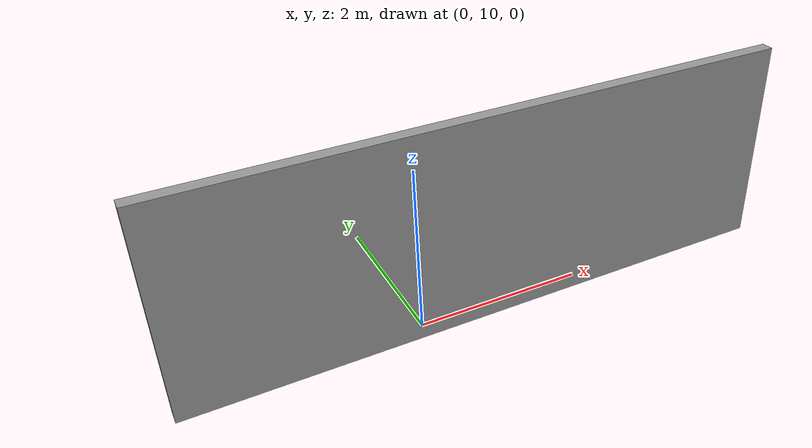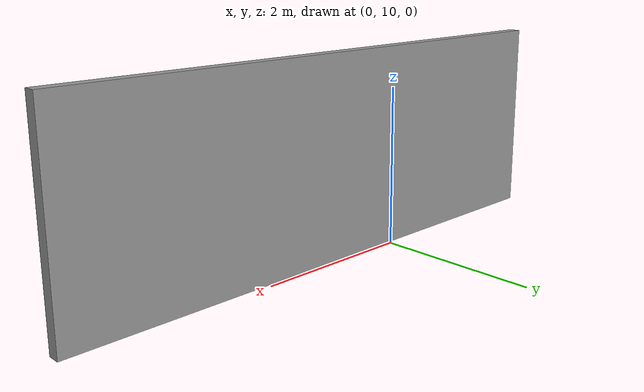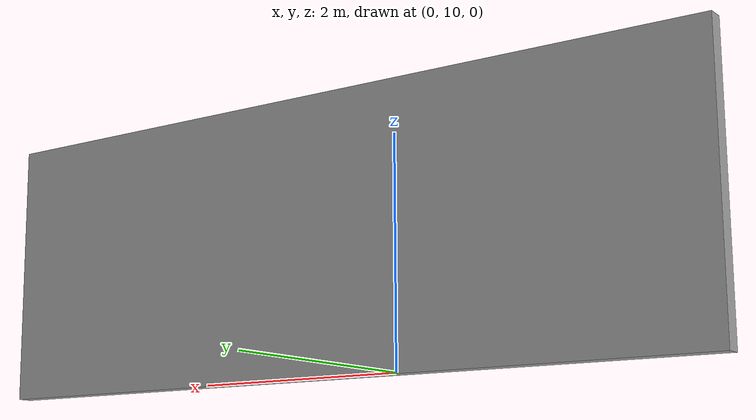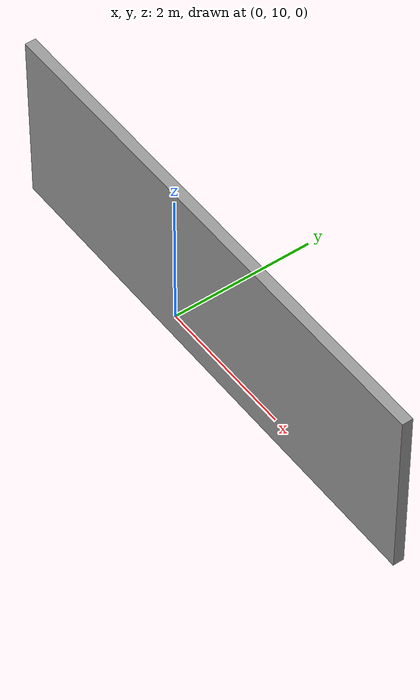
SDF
<?xml version='1.0'?>
<sdf version='1.6'>
  <model name='office'>
    <pose frame=''>0.86956 9.87635 0 0 -0 0</pose>
    <link name='Wall_1'>
      <collision name='Wall_1_Collision'>
        <geometry>
          <box>
            <size>7.25 0.15 2.5</size>
          </box>
        </geometry>
        <pose frame=''>0 0 1.25 0 -0 0</pose>
      </collision>
      <visual name='Wall_1_Visual'>
        <pose frame=''>0 0 1.25 0 -0 0</pose>
        <geometry>
          <box>
            <size>7.25 0.15 2.5</size>
          </box>
        </geometry>
        <material>
          <script>
            <uri>file://media/materials/scripts/gazebo.material</uri>
            <name>Gazebo/Grey</name>
          </script>
          <ambient>1 1 1 1</ambient>
        </material>
        <meta>
          <layer>0</layer>
        </meta>
      </visual>
      <pose frame=''>0 0 0 0 -0 0</pose>
    </link>
    <static>1</static>
  </model>
</sdf>
